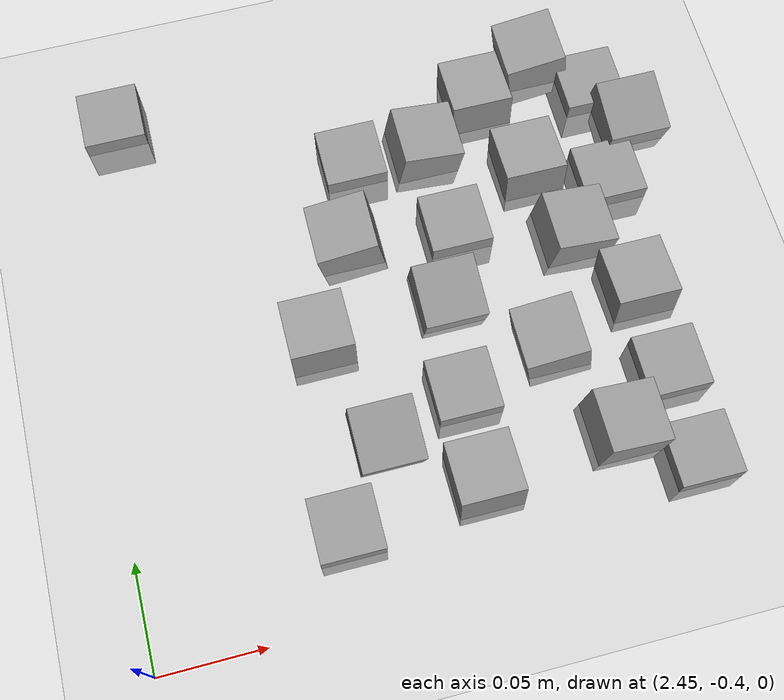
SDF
<sdf version="1.7">
 <world name="default">
  <model name="ground_plane">
   <static>1</static>
   <link name="link">
    <collision name="collision">
     <geometry><plane><normal>0 0 1</normal><size>100 100</size></plane></geometry>
     <surface><friction><ode><mu>100</mu><mu2>50</mu2></ode></friction></surface>
    </collision>
    <visual name="visual">
     <cast_shadows>0</cast_shadows>
     <geometry><plane><normal>0 0 1</normal><size>100 100</size></plane></geometry>
     <material>
      <script><uri>file://media/materials/scripts/gazebo.material</uri><name>Gazebo/Grey</name></script>
     </material>
    </visual>
   </link>
  </model>
  <model name="stone_road_4">
   <link name="link_0_clone_2_clone_2_clone_13_clone_clone_16_clone_19">
    <inertial>
     <mass>1</mass>
     <inertia>
      <ixx>0.166667</ixx>
      <ixy>0</ixy>
      <ixz>0</ixz>
      <iyy>0.166667</iyy>
      <iyz>0</iyz>
      <izz>0.166667</izz>
     </inertia>
    </inertial>
    <pose>0.219442 0.006622 -0.006222 0 -0 0</pose>
    <kinematic>1</kinematic>
    <visual name="visual">
     <geometry><box><size>0.03 0.03 0.03</size></box></geometry>
     <material>
      <lighting>1</lighting>
      <script><uri>file://media/materials/scripts/gazebo.material</uri><name>Gazebo/Grey</name></script>
      <shader type="pixel"><normal_map>__default__</normal_map></shader>
      <ambient>0.3 0.3 0.3 1</ambient>
      <diffuse>0.7 0.7 0.7 1</diffuse>
      <specular>0.01 0.01 0.01 1</specular>
      <emissive>0 0 0 1</emissive>
     </material>
    </visual>
    <collision name="collision">
     <geometry><box><size>0.03 0.03 0.03</size></box></geometry>
     <surface>
      <friction>
       <ode><mu>1</mu><mu2>1</mu2><fdir1>0 0 0</fdir1><slip1>0</slip1><slip2>0</slip2></ode>
       <torsional>
        <coefficient>1</coefficient>
        <patch_radius>0</patch_radius>
        <surface_radius>0</surface_radius>
        <use_patch_radius>1</use_patch_radius>
        <ode><slip>0</slip></ode>
       </torsional>
      </friction>
      <bounce><restitution_coefficient>0</restitution_coefficient><threshold>1e+06</threshold></bounce>
      <contact>
       <collide_without_contact>0</collide_without_contact>
       <collide_without_contact_bitmask>1</collide_without_contact_bitmask>
       <collide_bitmask>1</collide_bitmask>
       <ode>
        <soft_cfm>0</soft_cfm>
        <soft_erp>0.2</soft_erp>
        <kp>1e+13</kp>
        <kd>1</kd>
        <max_vel>0.01</max_vel>
        <min_depth>0</min_depth>
       </ode>
       <bullet>
        <split_impulse>1</split_impulse>
        <split_impulse_penetration_threshold>-0.01</split_impulse_penetration_threshold>
        <soft_cfm>0</soft_cfm>
        <soft_erp>0.2</soft_erp>
        <kp>1e+13</kp>
        <kd>1</kd>
       </bullet>
      </contact>
     </surface>
    </collision>
   </link>
   <static>0</static>
   <pose>2.25857 -0.135925 -0 0 -0 0</pose>
  </model>
  <model name="stone_road_9">
   <link name="link_0">
    <inertial>
     <mass>1</mass>
     <inertia>
      <ixx>0.166667</ixx>
      <ixy>0</ixy>
      <ixz>0</ixz>
      <iyy>0.166667</iyy>
      <iyz>0</iyz>
      <izz>0.166667</izz>
     </inertia>
    </inertial>
    <pose>-0.171827 0.03973 0.003778 0.2 -0 0</pose>
    <kinematic>1</kinematic>
    <visual name="visual">
     <geometry><box><size>0.03 0.03 0.03</size></box></geometry>
     <material>
      <lighting>1</lighting>
      <script><uri>file://media/materials/scripts/gazebo.material</uri><name>Gazebo/Grey</name></script>
      <shader type="pixel"><normal_map>__default__</normal_map></shader>
      <ambient>0.3 0.3 0.3 1</ambient>
      <diffuse>0.7 0.7 0.7 1</diffuse>
      <specular>0.01 0.01 0.01 1</specular>
      <emissive>0 0 0 1</emissive>
     </material>
    </visual>
    <collision name="collision">
     <geometry><box><size>0.03 0.03 0.03</size></box></geometry>
     <surface>
      <friction>
       <ode><mu>1</mu><mu2>1</mu2><fdir1>0 0 0</fdir1><slip1>0</slip1><slip2>0</slip2></ode>
       <torsional>
        <coefficient>1</coefficient>
        <patch_radius>0</patch_radius>
        <surface_radius>0</surface_radius>
        <use_patch_radius>1</use_patch_radius>
        <ode><slip>0</slip></ode>
       </torsional>
      </friction>
      <bounce><restitution_coefficient>0</restitution_coefficient><threshold>1e+06</threshold></bounce>
      <contact>
       <collide_without_contact>0</collide_without_contact>
       <collide_without_contact_bitmask>1</collide_without_contact_bitmask>
       <collide_bitmask>1</collide_bitmask>
       <ode>
        <soft_cfm>0</soft_cfm>
        <soft_erp>0.2</soft_erp>
        <kp>1e+13</kp>
        <kd>1</kd>
        <max_vel>0.01</max_vel>
        <min_depth>0</min_depth>
       </ode>
       <bullet>
        <split_impulse>1</split_impulse>
        <split_impulse_penetration_threshold>-0.01</split_impulse_penetration_threshold>
        <soft_cfm>0</soft_cfm>
        <soft_erp>0.2</soft_erp>
        <kp>1e+13</kp>
        <kd>1</kd>
       </bullet>
      </contact>
     </surface>
    </collision>
   </link>
   <link name="link_0_clone_10">
    <inertial>
     <mass>1</mass>
     <inertia>
      <ixx>0.166667</ixx>
      <ixy>0</ixy>
      <ixz>0</ixz>
      <iyy>0.166667</iyy>
      <iyz>0</iyz>
      <izz>0.166667</izz>
     </inertia>
    </inertial>
    <pose>-0.01295 0.17123 0.003778 0.2 -0 0</pose>
    <kinematic>1</kinematic>
    <visual name="visual">
     <geometry><box><size>0.03 0.03 0.03</size></box></geometry>
     <material>
      <lighting>1</lighting>
      <script><uri>file://media/materials/scripts/gazebo.material</uri><name>Gazebo/Grey</name></script>
      <shader type="pixel"><normal_map>__default__</normal_map></shader>
      <ambient>0.3 0.3 0.3 1</ambient>
      <diffuse>0.7 0.7 0.7 1</diffuse>
      <specular>0.01 0.01 0.01 1</specular>
      <emissive>0 0 0 1</emissive>
     </material>
    </visual>
    <collision name="collision">
     <geometry><box><size>0.03 0.03 0.03</size></box></geometry>
     <surface>
      <friction>
       <ode><mu>1</mu><mu2>1</mu2><fdir1>0 0 0</fdir1><slip1>0</slip1><slip2>0</slip2></ode>
       <torsional>
        <coefficient>1</coefficient>
        <patch_radius>0</patch_radius>
        <surface_radius>0</surface_radius>
        <use_patch_radius>1</use_patch_radius>
        <ode><slip>0</slip></ode>
       </torsional>
      </friction>
      <bounce><restitution_coefficient>0</restitution_coefficient><threshold>1e+06</threshold></bounce>
      <contact>
       <collide_without_contact>0</collide_without_contact>
       <collide_without_contact_bitmask>1</collide_without_contact_bitmask>
       <collide_bitmask>1</collide_bitmask>
       <ode>
        <soft_cfm>0</soft_cfm>
        <soft_erp>0.2</soft_erp>
        <kp>1e+13</kp>
        <kd>1</kd>
        <max_vel>0.01</max_vel>
        <min_depth>0</min_depth>
       </ode>
       <bullet>
        <split_impulse>1</split_impulse>
        <split_impulse_penetration_threshold>-0.01</split_impulse_penetration_threshold>
        <soft_cfm>0</soft_cfm>
        <soft_erp>0.2</soft_erp>
        <kp>1e+13</kp>
        <kd>1</kd>
       </bullet>
      </contact>
     </surface>
    </collision>
   </link>
   <link name="link_0_clone_2">
    <inertial>
     <mass>1</mass>
     <inertia>
      <ixx>0.166667</ixx>
      <ixy>0</ixy>
      <ixz>0</ixz>
      <iyy>0.166667</iyy>
      <iyz>0</iyz>
      <izz>0.166667</izz>
     </inertia>
    </inertial>
    <pose>-0.065685 0.018139 0.003778 0 0.15 0</pose>
    <kinematic>1</kinematic>
    <visual name="visual">
     <geometry><box><size>0.03 0.03 0.03</size></box></geometry>
     <material>
      <lighting>1</lighting>
      <script><uri>file://media/materials/scripts/gazebo.material</uri><name>Gazebo/Grey</name></script>
      <shader type="pixel"><normal_map>__default__</normal_map></shader>
      <ambient>0.3 0.3 0.3 1</ambient>
      <diffuse>0.7 0.7 0.7 1</diffuse>
      <specular>0.01 0.01 0.01 1</specular>
      <emissive>0 0 0 1</emissive>
     </material>
    </visual>
    <collision name="collision">
     <geometry><box><size>0.03 0.03 0.03</size></box></geometry>
     <surface>
      <friction>
       <ode><mu>1</mu><mu2>1</mu2><fdir1>0 0 0</fdir1><slip1>0</slip1><slip2>0</slip2></ode>
       <torsional>
        <coefficient>1</coefficient>
        <patch_radius>0</patch_radius>
        <surface_radius>0</surface_radius>
        <use_patch_radius>1</use_patch_radius>
        <ode><slip>0</slip></ode>
       </torsional>
      </friction>
      <bounce><restitution_coefficient>0</restitution_coefficient><threshold>1e+06</threshold></bounce>
      <contact>
       <collide_without_contact>0</collide_without_contact>
       <collide_without_contact_bitmask>1</collide_without_contact_bitmask>
       <collide_bitmask>1</collide_bitmask>
       <ode>
        <soft_cfm>0</soft_cfm>
        <soft_erp>0.2</soft_erp>
        <kp>1e+13</kp>
        <kd>1</kd>
        <max_vel>0.01</max_vel>
        <min_depth>0</min_depth>
       </ode>
       <bullet>
        <split_impulse>1</split_impulse>
        <split_impulse_penetration_threshold>-0.01</split_impulse_penetration_threshold>
        <soft_cfm>0</soft_cfm>
        <soft_erp>0.2</soft_erp>
        <kp>1e+13</kp>
        <kd>1</kd>
       </bullet>
      </contact>
     </surface>
    </collision>
   </link>
   <link name="link_0_clone_2_clone_2_clone_1">
    <inertial>
     <mass>1</mass>
     <inertia>
      <ixx>0.166667</ixx>
      <ixy>0</ixy>
      <ixz>0</ixz>
      <iyy>0.166667</iyy>
      <iyz>0</iyz>
      <izz>0.166667</izz>
     </inertia>
    </inertial>
    <pose>-0.085624 0.065625 0.003778 0 -0.15 0</pose>
    <kinematic>1</kinematic>
    <visual name="visual">
     <geometry><box><size>0.03 0.03 0.03</size></box></geometry>
     <material>
      <lighting>1</lighting>
      <script><uri>file://media/materials/scripts/gazebo.material</uri><name>Gazebo/Grey</name></script>
      <shader type="pixel"><normal_map>__default__</normal_map></shader>
      <ambient>0.3 0.3 0.3 1</ambient>
      <diffuse>0.7 0.7 0.7 1</diffuse>
      <specular>0.01 0.01 0.01 1</specular>
      <emissive>0 0 0 1</emissive>
     </material>
    </visual>
    <collision name="collision">
     <geometry><box><size>0.03 0.03 0.03</size></box></geometry>
     <surface>
      <friction>
       <ode><mu>1</mu><mu2>1</mu2><fdir1>0 0 0</fdir1><slip1>0</slip1><slip2>0</slip2></ode>
       <torsional>
        <coefficient>1</coefficient>
        <patch_radius>0</patch_radius>
        <surface_radius>0</surface_radius>
        <use_patch_radius>1</use_patch_radius>
        <ode><slip>0</slip></ode>
       </torsional>
      </friction>
      <bounce><restitution_coefficient>0</restitution_coefficient><threshold>1e+06</threshold></bounce>
      <contact>
       <collide_without_contact>0</collide_without_contact>
       <collide_without_contact_bitmask>1</collide_without_contact_bitmask>
       <collide_bitmask>1</collide_bitmask>
       <ode>
        <soft_cfm>0</soft_cfm>
        <soft_erp>0.2</soft_erp>
        <kp>1e+13</kp>
        <kd>1</kd>
        <max_vel>0.01</max_vel>
        <min_depth>0</min_depth>
       </ode>
       <bullet>
        <split_impulse>1</split_impulse>
        <split_impulse_penetration_threshold>-0.01</split_impulse_penetration_threshold>
        <soft_cfm>0</soft_cfm>
        <soft_erp>0.2</soft_erp>
        <kp>1e+13</kp>
        <kd>1</kd>
       </bullet>
      </contact>
     </surface>
    </collision>
   </link>
   <link name="link_0_clone_2_clone_2_clone_11">
    <inertial>
     <mass>1</mass>
     <inertia>
      <ixx>0.166667</ixx>
      <ixy>0</ixy>
      <ixz>0</ixz>
      <iyy>0.166667</iyy>
      <iyz>0</iyz>
      <izz>0.166667</izz>
     </inertia>
    </inertial>
    <pose>-0.050382 0.216558 0.003778 0 -0.15 0</pose>
    <kinematic>1</kinematic>
    <visual name="visual">
     <geometry><box><size>0.03 0.03 0.03</size></box></geometry>
     <material>
      <lighting>1</lighting>
      <script><uri>file://media/materials/scripts/gazebo.material</uri><name>Gazebo/Grey</name></script>
      <shader type="pixel"><normal_map>__default__</normal_map></shader>
      <ambient>0.3 0.3 0.3 1</ambient>
      <diffuse>0.7 0.7 0.7 1</diffuse>
      <specular>0.01 0.01 0.01 1</specular>
      <emissive>0 0 0 1</emissive>
     </material>
    </visual>
    <collision name="collision">
     <geometry><box><size>0.03 0.03 0.03</size></box></geometry>
     <surface>
      <friction>
       <ode><mu>1</mu><mu2>1</mu2><fdir1>0 0 0</fdir1><slip1>0</slip1><slip2>0</slip2></ode>
       <torsional>
        <coefficient>1</coefficient>
        <patch_radius>0</patch_radius>
        <surface_radius>0</surface_radius>
        <use_patch_radius>1</use_patch_radius>
        <ode><slip>0</slip></ode>
       </torsional>
      </friction>
      <bounce><restitution_coefficient>0</restitution_coefficient><threshold>1e+06</threshold></bounce>
      <contact>
       <collide_without_contact>0</collide_without_contact>
       <collide_without_contact_bitmask>1</collide_without_contact_bitmask>
       <collide_bitmask>1</collide_bitmask>
       <ode>
        <soft_cfm>0</soft_cfm>
        <soft_erp>0.2</soft_erp>
        <kp>1e+13</kp>
        <kd>1</kd>
        <max_vel>0.01</max_vel>
        <min_depth>0</min_depth>
       </ode>
       <bullet>
        <split_impulse>1</split_impulse>
        <split_impulse_penetration_threshold>-0.01</split_impulse_penetration_threshold>
        <soft_cfm>0</soft_cfm>
        <soft_erp>0.2</soft_erp>
        <kp>1e+13</kp>
        <kd>1</kd>
       </bullet>
      </contact>
     </surface>
    </collision>
   </link>
   <link name="link_0_clone_2_clone_2_clone_13_clone_clone_13">
    <inertial>
     <mass>1</mass>
     <inertia>
      <ixx>0.166667</ixx>
      <ixy>0</ixy>
      <ixz>0</ixz>
      <iyy>0.166667</iyy>
      <iyz>0</iyz>
      <izz>0.166667</izz>
     </inertia>
    </inertial>
    <pose>-0.069861 0.157394 0.003778 -0.1 0 0</pose>
    <kinematic>1</kinematic>
    <visual name="visual">
     <geometry><box><size>0.03 0.03 0.03</size></box></geometry>
     <material>
      <lighting>1</lighting>
      <script><uri>file://media/materials/scripts/gazebo.material</uri><name>Gazebo/Grey</name></script>
      <shader type="pixel"><normal_map>__default__</normal_map></shader>
      <ambient>0.3 0.3 0.3 1</ambient>
      <diffuse>0.7 0.7 0.7 1</diffuse>
      <specular>0.01 0.01 0.01 1</specular>
      <emissive>0 0 0 1</emissive>
     </material>
    </visual>
    <collision name="collision">
     <geometry><box><size>0.03 0.03 0.03</size></box></geometry>
     <surface>
      <friction>
       <ode><mu>1</mu><mu2>1</mu2><fdir1>0 0 0</fdir1><slip1>0</slip1><slip2>0</slip2></ode>
       <torsional>
        <coefficient>1</coefficient>
        <patch_radius>0</patch_radius>
        <surface_radius>0</surface_radius>
        <use_patch_radius>1</use_patch_radius>
        <ode><slip>0</slip></ode>
       </torsional>
      </friction>
      <bounce><restitution_coefficient>0</restitution_coefficient><threshold>1e+06</threshold></bounce>
      <contact>
       <collide_without_contact>0</collide_without_contact>
       <collide_without_contact_bitmask>1</collide_without_contact_bitmask>
       <collide_bitmask>1</collide_bitmask>
       <ode>
        <soft_cfm>0</soft_cfm>
        <soft_erp>0.2</soft_erp>
        <kp>1e+13</kp>
        <kd>1</kd>
        <max_vel>0.01</max_vel>
        <min_depth>0</min_depth>
       </ode>
       <bullet>
        <split_impulse>1</split_impulse>
        <split_impulse_penetration_threshold>-0.01</split_impulse_penetration_threshold>
        <soft_cfm>0</soft_cfm>
        <soft_erp>0.2</soft_erp>
        <kp>1e+13</kp>
        <kd>1</kd>
       </bullet>
      </contact>
     </surface>
    </collision>
   </link>
   <link name="link_0_clone_2_clone_2_clone_13_clone_clone_14">
    <inertial>
     <mass>1</mass>
     <inertia>
      <ixx>0.166667</ixx>
      <ixy>0</ixy>
      <ixz>0</ixz>
      <iyy>0.166667</iyy>
      <iyz>0</iyz>
      <izz>0.166667</izz>
     </inertia>
    </inertial>
    <pose>-0.190578 0.093923 0.003778 -0.1 0 0</pose>
    <kinematic>1</kinematic>
    <visual name="visual">
     <geometry><box><size>0.03 0.03 0.03</size></box></geometry>
     <material>
      <lighting>1</lighting>
      <script><uri>file://media/materials/scripts/gazebo.material</uri><name>Gazebo/Grey</name></script>
      <shader type="pixel"><normal_map>__default__</normal_map></shader>
      <ambient>0.3 0.3 0.3 1</ambient>
      <diffuse>0.7 0.7 0.7 1</diffuse>
      <specular>0.01 0.01 0.01 1</specular>
      <emissive>0 0 0 1</emissive>
     </material>
    </visual>
    <collision name="collision">
     <geometry><box><size>0.03 0.03 0.03</size></box></geometry>
     <surface>
      <friction>
       <ode><mu>1</mu><mu2>1</mu2><fdir1>0 0 0</fdir1><slip1>0</slip1><slip2>0</slip2></ode>
       <torsional>
        <coefficient>1</coefficient>
        <patch_radius>0</patch_radius>
        <surface_radius>0</surface_radius>
        <use_patch_radius>1</use_patch_radius>
        <ode><slip>0</slip></ode>
       </torsional>
      </friction>
      <bounce><restitution_coefficient>0</restitution_coefficient><threshold>1e+06</threshold></bounce>
      <contact>
       <collide_without_contact>0</collide_without_contact>
       <collide_without_contact_bitmask>1</collide_without_contact_bitmask>
       <collide_bitmask>1</collide_bitmask>
       <ode>
        <soft_cfm>0</soft_cfm>
        <soft_erp>0.2</soft_erp>
        <kp>1e+13</kp>
        <kd>1</kd>
        <max_vel>0.01</max_vel>
        <min_depth>0</min_depth>
       </ode>
       <bullet>
        <split_impulse>1</split_impulse>
        <split_impulse_penetration_threshold>-0.01</split_impulse_penetration_threshold>
        <soft_cfm>0</soft_cfm>
        <soft_erp>0.2</soft_erp>
        <kp>1e+13</kp>
        <kd>1</kd>
       </bullet>
      </contact>
     </surface>
    </collision>
   </link>
   <link name="link_0_clone_2_clone_2_clone_13_clone_clone_15">
    <inertial>
     <mass>1</mass>
     <inertia>
      <ixx>0.166667</ixx>
      <ixy>0</ixy>
      <ixz>0</ixz>
      <iyy>0.166667</iyy>
      <iyz>0</iyz>
      <izz>0.166667</izz>
     </inertia>
    </inertial>
    <pose>-0.084893 0.19984 0.003778 -0.1 0 0</pose>
    <kinematic>1</kinematic>
    <visual name="visual">
     <geometry><box><size>0.03 0.03 0.03</size></box></geometry>
     <material>
      <lighting>1</lighting>
      <script><uri>file://media/materials/scripts/gazebo.material</uri><name>Gazebo/Grey</name></script>
      <shader type="pixel"><normal_map>__default__</normal_map></shader>
      <ambient>0.3 0.3 0.3 1</ambient>
      <diffuse>0.7 0.7 0.7 1</diffuse>
      <specular>0.01 0.01 0.01 1</specular>
      <emissive>0 0 0 1</emissive>
     </material>
    </visual>
    <collision name="collision">
     <geometry><box><size>0.03 0.03 0.03</size></box></geometry>
     <surface>
      <friction>
       <ode><mu>1</mu><mu2>1</mu2><fdir1>0 0 0</fdir1><slip1>0</slip1><slip2>0</slip2></ode>
       <torsional>
        <coefficient>1</coefficient>
        <patch_radius>0</patch_radius>
        <surface_radius>0</surface_radius>
        <use_patch_radius>1</use_patch_radius>
        <ode><slip>0</slip></ode>
       </torsional>
      </friction>
      <bounce><restitution_coefficient>0</restitution_coefficient><threshold>1e+06</threshold></bounce>
      <contact>
       <collide_without_contact>0</collide_without_contact>
       <collide_without_contact_bitmask>1</collide_without_contact_bitmask>
       <collide_bitmask>1</collide_bitmask>
       <ode>
        <soft_cfm>0</soft_cfm>
        <soft_erp>0.2</soft_erp>
        <kp>1e+13</kp>
        <kd>1</kd>
        <max_vel>0.01</max_vel>
        <min_depth>0</min_depth>
       </ode>
       <bullet>
        <split_impulse>1</split_impulse>
        <split_impulse_penetration_threshold>-0.01</split_impulse_penetration_threshold>
        <soft_cfm>0</soft_cfm>
        <soft_erp>0.2</soft_erp>
        <kp>1e+13</kp>
        <kd>1</kd>
       </bullet>
      </contact>
     </surface>
    </collision>
   </link>
   <link name="link_0_clone_2_clone_2_clone_13_clone_clone_16_clone_2">
    <inertial>
     <mass>1</mass>
     <inertia>
      <ixx>0.166667</ixx>
      <ixy>0</ixy>
      <ixz>0</ixz>
      <iyy>0.166667</iyy>
      <iyz>0</iyz>
      <izz>0.166667</izz>
     </inertia>
    </inertial>
    <pose>-0.035128 0.040728 -0.006222 0 -0 0</pose>
    <kinematic>1</kinematic>
    <visual name="visual">
     <geometry><box><size>0.03 0.03 0.03</size></box></geometry>
     <material>
      <lighting>1</lighting>
      <script><uri>file://media/materials/scripts/gazebo.material</uri><name>Gazebo/Grey</name></script>
      <shader type="pixel"><normal_map>__default__</normal_map></shader>
      <ambient>0.3 0.3 0.3 1</ambient>
      <diffuse>0.7 0.7 0.7 1</diffuse>
      <specular>0.01 0.01 0.01 1</specular>
      <emissive>0 0 0 1</emissive>
     </material>
    </visual>
    <collision name="collision">
     <geometry><box><size>0.03 0.03 0.03</size></box></geometry>
     <surface>
      <friction>
       <ode><mu>1</mu><mu2>1</mu2><fdir1>0 0 0</fdir1><slip1>0</slip1><slip2>0</slip2></ode>
       <torsional>
        <coefficient>1</coefficient>
        <patch_radius>0</patch_radius>
        <surface_radius>0</surface_radius>
        <use_patch_radius>1</use_patch_radius>
        <ode><slip>0</slip></ode>
       </torsional>
      </friction>
      <bounce><restitution_coefficient>0</restitution_coefficient><threshold>1e+06</threshold></bounce>
      <contact>
       <collide_without_contact>0</collide_without_contact>
       <collide_without_contact_bitmask>1</collide_without_contact_bitmask>
       <collide_bitmask>1</collide_bitmask>
       <ode>
        <soft_cfm>0</soft_cfm>
        <soft_erp>0.2</soft_erp>
        <kp>1e+13</kp>
        <kd>1</kd>
        <max_vel>0.01</max_vel>
        <min_depth>0</min_depth>
       </ode>
       <bullet>
        <split_impulse>1</split_impulse>
        <split_impulse_penetration_threshold>-0.01</split_impulse_penetration_threshold>
        <soft_cfm>0</soft_cfm>
        <soft_erp>0.2</soft_erp>
        <kp>1e+13</kp>
        <kd>1</kd>
       </bullet>
      </contact>
     </surface>
    </collision>
   </link>
   <link name="link_0_clone_2_clone_2_clone_13_clone_clone_16_clone_21">
    <inertial>
     <mass>1</mass>
     <inertia>
      <ixx>0.166667</ixx>
      <ixy>0</ixy>
      <ixz>0</ixz>
      <iyy>0.166667</iyy>
      <iyz>0</iyz>
      <izz>0.166667</izz>
     </inertia>
    </inertial>
    <pose>-0.032398 0.142589 -0.006222 0 -0 0</pose>
    <kinematic>1</kinematic>
    <visual name="visual">
     <geometry><box><size>0.03 0.03 0.03</size></box></geometry>
     <material>
      <lighting>1</lighting>
      <script><uri>file://media/materials/scripts/gazebo.material</uri><name>Gazebo/Grey</name></script>
      <shader type="pixel"><normal_map>__default__</normal_map></shader>
      <ambient>0.3 0.3 0.3 1</ambient>
      <diffuse>0.7 0.7 0.7 1</diffuse>
      <specular>0.01 0.01 0.01 1</specular>
      <emissive>0 0 0 1</emissive>
     </material>
    </visual>
    <collision name="collision">
     <geometry><box><size>0.03 0.03 0.03</size></box></geometry>
     <surface>
      <friction>
       <ode><mu>1</mu><mu2>1</mu2><fdir1>0 0 0</fdir1><slip1>0</slip1><slip2>0</slip2></ode>
       <torsional>
        <coefficient>1</coefficient>
        <patch_radius>0</patch_radius>
        <surface_radius>0</surface_radius>
        <use_patch_radius>1</use_patch_radius>
        <ode><slip>0</slip></ode>
       </torsional>
      </friction>
      <bounce><restitution_coefficient>0</restitution_coefficient><threshold>1e+06</threshold></bounce>
      <contact>
       <collide_without_contact>0</collide_without_contact>
       <collide_without_contact_bitmask>1</collide_without_contact_bitmask>
       <collide_bitmask>1</collide_bitmask>
       <ode>
        <soft_cfm>0</soft_cfm>
        <soft_erp>0.2</soft_erp>
        <kp>1e+13</kp>
        <kd>1</kd>
        <max_vel>0.01</max_vel>
        <min_depth>0</min_depth>
       </ode>
       <bullet>
        <split_impulse>1</split_impulse>
        <split_impulse_penetration_threshold>-0.01</split_impulse_penetration_threshold>
        <soft_cfm>0</soft_cfm>
        <soft_erp>0.2</soft_erp>
        <kp>1e+13</kp>
        <kd>1</kd>
       </bullet>
      </contact>
     </surface>
    </collision>
   </link>
   <link name="link_0_clone_2_clone_2_clone_13_clone_clone_16_clone_22">
    <inertial>
     <mass>1</mass>
     <inertia>
      <ixx>0.166667</ixx>
      <ixy>0</ixy>
      <ixz>0</ixz>
      <iyy>0.166667</iyy>
      <iyz>0</iyz>
      <izz>0.166667</izz>
     </inertia>
    </inertial>
    <pose>-0.025872 0.194724 -0.006222 0 -0 0</pose>
    <kinematic>1</kinematic>
    <visual name="visual">
     <geometry><box><size>0.03 0.03 0.03</size></box></geometry>
     <material>
      <lighting>1</lighting>
      <script><uri>file://media/materials/scripts/gazebo.material</uri><name>Gazebo/Grey</name></script>
      <shader type="pixel"><normal_map>__default__</normal_map></shader>
      <ambient>0.3 0.3 0.3 1</ambient>
      <diffuse>0.7 0.7 0.7 1</diffuse>
      <specular>0.01 0.01 0.01 1</specular>
      <emissive>0 0 0 1</emissive>
     </material>
    </visual>
    <collision name="collision">
     <geometry><box><size>0.03 0.03 0.03</size></box></geometry>
     <surface>
      <friction>
       <ode><mu>1</mu><mu2>1</mu2><fdir1>0 0 0</fdir1><slip1>0</slip1><slip2>0</slip2></ode>
       <torsional>
        <coefficient>1</coefficient>
        <patch_radius>0</patch_radius>
        <surface_radius>0</surface_radius>
        <use_patch_radius>1</use_patch_radius>
        <ode><slip>0</slip></ode>
       </torsional>
      </friction>
      <bounce><restitution_coefficient>0</restitution_coefficient><threshold>1e+06</threshold></bounce>
      <contact>
       <collide_without_contact>0</collide_without_contact>
       <collide_without_contact_bitmask>1</collide_without_contact_bitmask>
       <collide_bitmask>1</collide_bitmask>
       <ode>
        <soft_cfm>0</soft_cfm>
        <soft_erp>0.2</soft_erp>
        <kp>1e+13</kp>
        <kd>1</kd>
        <max_vel>0.01</max_vel>
        <min_depth>0</min_depth>
       </ode>
       <bullet>
        <split_impulse>1</split_impulse>
        <split_impulse_penetration_threshold>-0.01</split_impulse_penetration_threshold>
        <soft_cfm>0</soft_cfm>
        <soft_erp>0.2</soft_erp>
        <kp>1e+13</kp>
        <kd>1</kd>
       </bullet>
      </contact>
     </surface>
    </collision>
   </link>
   <link name="link_0_clone_2_clone_2_clone_13_clone_clone_16_clone_25">
    <inertial>
     <mass>1</mass>
     <inertia>
      <ixx>0.166667</ixx>
      <ixy>0</ixy>
      <ixz>0</ixz>
      <iyy>0.166667</iyy>
      <iyz>0</iyz>
      <izz>0.166667</izz>
     </inertia>
    </inertial>
    <pose>-0.15326 0.182661 -0.006222 0 -0 0</pose>
    <kinematic>1</kinematic>
    <visual name="visual">
     <geometry><box><size>0.03 0.03 0.03</size></box></geometry>
     <material>
      <lighting>1</lighting>
      <script><uri>file://media/materials/scripts/gazebo.material</uri><name>Gazebo/Grey</name></script>
      <shader type="pixel"><normal_map>__default__</normal_map></shader>
      <ambient>0.3 0.3 0.3 1</ambient>
      <diffuse>0.7 0.7 0.7 1</diffuse>
      <specular>0.01 0.01 0.01 1</specular>
      <emissive>0 0 0 1</emissive>
     </material>
    </visual>
    <collision name="collision">
     <geometry><box><size>0.03 0.03 0.03</size></box></geometry>
     <surface>
      <friction>
       <ode><mu>1</mu><mu2>1</mu2><fdir1>0 0 0</fdir1><slip1>0</slip1><slip2>0</slip2></ode>
       <torsional>
        <coefficient>1</coefficient>
        <patch_radius>0</patch_radius>
        <surface_radius>0</surface_radius>
        <use_patch_radius>1</use_patch_radius>
        <ode><slip>0</slip></ode>
       </torsional>
      </friction>
      <bounce><restitution_coefficient>0</restitution_coefficient><threshold>1e+06</threshold></bounce>
      <contact>
       <collide_without_contact>0</collide_without_contact>
       <collide_without_contact_bitmask>1</collide_without_contact_bitmask>
       <collide_bitmask>1</collide_bitmask>
       <ode>
        <soft_cfm>0</soft_cfm>
        <soft_erp>0.2</soft_erp>
        <kp>1e+13</kp>
        <kd>1</kd>
        <max_vel>0.01</max_vel>
        <min_depth>0</min_depth>
       </ode>
       <bullet>
        <split_impulse>1</split_impulse>
        <split_impulse_penetration_threshold>-0.01</split_impulse_penetration_threshold>
        <soft_cfm>0</soft_cfm>
        <soft_erp>0.2</soft_erp>
        <kp>1e+13</kp>
        <kd>1</kd>
       </bullet>
      </contact>
     </surface>
    </collision>
   </link>
   <link name="link_0_clone_2_clone_2_clone_13_clone_clone_16_clone_26">
    <inertial>
     <mass>1</mass>
     <inertia>
      <ixx>0.166667</ixx>
      <ixy>0</ixy>
      <ixz>0</ixz>
      <iyy>0.166667</iyy>
      <iyz>0</iyz>
      <izz>0.166667</izz>
     </inertia>
    </inertial>
    <pose>-0.035162 -0.002247 -0.006222 0 -0 0</pose>
    <kinematic>1</kinematic>
    <visual name="visual">
     <geometry><box><size>0.03 0.03 0.03</size></box></geometry>
     <material>
      <lighting>1</lighting>
      <script><uri>file://media/materials/scripts/gazebo.material</uri><name>Gazebo/Grey</name></script>
      <shader type="pixel"><normal_map>__default__</normal_map></shader>
      <ambient>0.3 0.3 0.3 1</ambient>
      <diffuse>0.7 0.7 0.7 1</diffuse>
      <specular>0.01 0.01 0.01 1</specular>
      <emissive>0 0 0 1</emissive>
     </material>
    </visual>
    <collision name="collision">
     <geometry><box><size>0.03 0.03 0.03</size></box></geometry>
     <surface>
      <friction>
       <ode><mu>1</mu><mu2>1</mu2><fdir1>0 0 0</fdir1><slip1>0</slip1><slip2>0</slip2></ode>
       <torsional>
        <coefficient>1</coefficient>
        <patch_radius>0</patch_radius>
        <surface_radius>0</surface_radius>
        <use_patch_radius>1</use_patch_radius>
        <ode><slip>0</slip></ode>
       </torsional>
      </friction>
      <bounce><restitution_coefficient>0</restitution_coefficient><threshold>1e+06</threshold></bounce>
      <contact>
       <collide_without_contact>0</collide_without_contact>
       <collide_without_contact_bitmask>1</collide_without_contact_bitmask>
       <collide_bitmask>1</collide_bitmask>
       <ode>
        <soft_cfm>0</soft_cfm>
        <soft_erp>0.2</soft_erp>
        <kp>1e+13</kp>
        <kd>1</kd>
        <max_vel>0.01</max_vel>
        <min_depth>0</min_depth>
       </ode>
       <bullet>
        <split_impulse>1</split_impulse>
        <split_impulse_penetration_threshold>-0.01</split_impulse_penetration_threshold>
        <soft_cfm>0</soft_cfm>
        <soft_erp>0.2</soft_erp>
        <kp>1e+13</kp>
        <kd>1</kd>
       </bullet>
      </contact>
     </surface>
    </collision>
   </link>
   <link name="link_0_clone_2_clone_2_clone_13_clone_clone_16_clone_3">
    <inertial>
     <mass>1</mass>
     <inertia>
      <ixx>0.166667</ixx>
      <ixy>0</ixy>
      <ixz>0</ixz>
      <iyy>0.166667</iyy>
      <iyz>0</iyz>
      <izz>0.166667</izz>
     </inertia>
    </inertial>
    <pose>-0.112739 0.135576 -0.006222 0 -0 0</pose>
    <kinematic>1</kinematic>
    <visual name="visual">
     <geometry><box><size>0.03 0.03 0.03</size></box></geometry>
     <material>
      <lighting>1</lighting>
      <script><uri>file://media/materials/scripts/gazebo.material</uri><name>Gazebo/Grey</name></script>
      <shader type="pixel"><normal_map>__default__</normal_map></shader>
      <ambient>0.3 0.3 0.3 1</ambient>
      <diffuse>0.7 0.7 0.7 1</diffuse>
      <specular>0.01 0.01 0.01 1</specular>
      <emissive>0 0 0 1</emissive>
     </material>
    </visual>
    <collision name="collision">
     <geometry><box><size>0.03 0.03 0.03</size></box></geometry>
     <surface>
      <friction>
       <ode><mu>1</mu><mu2>1</mu2><fdir1>0 0 0</fdir1><slip1>0</slip1><slip2>0</slip2></ode>
       <torsional>
        <coefficient>1</coefficient>
        <patch_radius>0</patch_radius>
        <surface_radius>0</surface_radius>
        <use_patch_radius>1</use_patch_radius>
        <ode><slip>0</slip></ode>
       </torsional>
      </friction>
      <bounce><restitution_coefficient>0</restitution_coefficient><threshold>1e+06</threshold></bounce>
      <contact>
       <collide_without_contact>0</collide_without_contact>
       <collide_without_contact_bitmask>1</collide_without_contact_bitmask>
       <collide_bitmask>1</collide_bitmask>
       <ode>
        <soft_cfm>0</soft_cfm>
        <soft_erp>0.2</soft_erp>
        <kp>1e+13</kp>
        <kd>1</kd>
        <max_vel>0.01</max_vel>
        <min_depth>0</min_depth>
       </ode>
       <bullet>
        <split_impulse>1</split_impulse>
        <split_impulse_penetration_threshold>-0.01</split_impulse_penetration_threshold>
        <soft_cfm>0</soft_cfm>
        <soft_erp>0.2</soft_erp>
        <kp>1e+13</kp>
        <kd>1</kd>
       </bullet>
      </contact>
     </surface>
    </collision>
   </link>
   <link name="link_0_clone_2_clone_2_clone_13_clone_clone_16_clone_31">
    <inertial>
     <mass>1</mass>
     <inertia>
      <ixx>0.166667</ixx>
      <ixy>0</ixy>
      <ixz>0</ixz>
      <iyy>0.166667</iyy>
      <iyz>0</iyz>
      <izz>0.166667</izz>
     </inertia>
    </inertial>
    <pose>-0.198811 0.004584 -0.006222 0 -0 0</pose>
    <kinematic>1</kinematic>
    <visual name="visual">
     <geometry><box><size>0.03 0.03 0.03</size></box></geometry>
     <material>
      <lighting>1</lighting>
      <script><uri>file://media/materials/scripts/gazebo.material</uri><name>Gazebo/Grey</name></script>
      <shader type="pixel"><normal_map>__default__</normal_map></shader>
      <ambient>0.3 0.3 0.3 1</ambient>
      <diffuse>0.7 0.7 0.7 1</diffuse>
      <specular>0.01 0.01 0.01 1</specular>
      <emissive>0 0 0 1</emissive>
     </material>
    </visual>
    <collision name="collision">
     <geometry><box><size>0.03 0.03 0.03</size></box></geometry>
     <surface>
      <friction>
       <ode><mu>1</mu><mu2>1</mu2><fdir1>0 0 0</fdir1><slip1>0</slip1><slip2>0</slip2></ode>
       <torsional>
        <coefficient>1</coefficient>
        <patch_radius>0</patch_radius>
        <surface_radius>0</surface_radius>
        <use_patch_radius>1</use_patch_radius>
        <ode><slip>0</slip></ode>
       </torsional>
      </friction>
      <bounce><restitution_coefficient>0</restitution_coefficient><threshold>1e+06</threshold></bounce>
      <contact>
       <collide_without_contact>0</collide_without_contact>
       <collide_without_contact_bitmask>1</collide_without_contact_bitmask>
       <collide_bitmask>1</collide_bitmask>
       <ode>
        <soft_cfm>0</soft_cfm>
        <soft_erp>0.2</soft_erp>
        <kp>1e+13</kp>
        <kd>1</kd>
        <max_vel>0.01</max_vel>
        <min_depth>0</min_depth>
       </ode>
       <bullet>
        <split_impulse>1</split_impulse>
        <split_impulse_penetration_threshold>-0.01</split_impulse_penetration_threshold>
        <soft_cfm>0</soft_cfm>
        <soft_erp>0.2</soft_erp>
        <kp>1e+13</kp>
        <kd>1</kd>
       </bullet>
      </contact>
     </surface>
    </collision>
   </link>
   <link name="link_0_clone_2_clone_2_clone_13_clone_clone_16_clone_4">
    <inertial>
     <mass>1</mass>
     <inertia>
      <ixx>0.166667</ixx>
      <ixy>0</ixy>
      <ixz>0</ixz>
      <iyy>0.166667</iyy>
      <iyz>0</iyz>
      <izz>0.166667</izz>
     </inertia>
    </inertial>
    <pose>-0.131411 0.053677 -0.006222 0 -0 0</pose>
    <kinematic>1</kinematic>
    <visual name="visual">
     <geometry><box><size>0.03 0.03 0.03</size></box></geometry>
     <material>
      <lighting>1</lighting>
      <script><uri>file://media/materials/scripts/gazebo.material</uri><name>Gazebo/Grey</name></script>
      <shader type="pixel"><normal_map>__default__</normal_map></shader>
      <ambient>0.3 0.3 0.3 1</ambient>
      <diffuse>0.7 0.7 0.7 1</diffuse>
      <specular>0.01 0.01 0.01 1</specular>
      <emissive>0 0 0 1</emissive>
     </material>
    </visual>
    <collision name="collision">
     <geometry><box><size>0.03 0.03 0.03</size></box></geometry>
     <surface>
      <friction>
       <ode><mu>1</mu><mu2>1</mu2><fdir1>0 0 0</fdir1><slip1>0</slip1><slip2>0</slip2></ode>
       <torsional>
        <coefficient>1</coefficient>
        <patch_radius>0</patch_radius>
        <surface_radius>0</surface_radius>
        <use_patch_radius>1</use_patch_radius>
        <ode><slip>0</slip></ode>
       </torsional>
      </friction>
      <bounce><restitution_coefficient>0</restitution_coefficient><threshold>1e+06</threshold></bounce>
      <contact>
       <collide_without_contact>0</collide_without_contact>
       <collide_without_contact_bitmask>1</collide_without_contact_bitmask>
       <collide_bitmask>1</collide_bitmask>
       <ode>
        <soft_cfm>0</soft_cfm>
        <soft_erp>0.2</soft_erp>
        <kp>1e+13</kp>
        <kd>1</kd>
        <max_vel>0.01</max_vel>
        <min_depth>0</min_depth>
       </ode>
       <bullet>
        <split_impulse>1</split_impulse>
        <split_impulse_penetration_threshold>-0.01</split_impulse_penetration_threshold>
        <soft_cfm>0</soft_cfm>
        <soft_erp>0.2</soft_erp>
        <kp>1e+13</kp>
        <kd>1</kd>
       </bullet>
      </contact>
     </surface>
    </collision>
   </link>
   <link name="link_0_clone_2_clone_2_clone_13_clone_clone_2">
    <inertial>
     <mass>1</mass>
     <inertia>
      <ixx>0.166667</ixx>
      <ixy>0</ixy>
      <ixz>0</ixz>
      <iyy>0.166667</iyy>
      <iyz>0</iyz>
      <izz>0.166667</izz>
     </inertia>
    </inertial>
    <pose>-0.037997 0.082571 0.003778 -0.1 0 0</pose>
    <kinematic>1</kinematic>
    <visual name="visual">
     <geometry><box><size>0.03 0.03 0.03</size></box></geometry>
     <material>
      <lighting>1</lighting>
      <script><uri>file://media/materials/scripts/gazebo.material</uri><name>Gazebo/Grey</name></script>
      <shader type="pixel"><normal_map>__default__</normal_map></shader>
      <ambient>0.3 0.3 0.3 1</ambient>
      <diffuse>0.7 0.7 0.7 1</diffuse>
      <specular>0.01 0.01 0.01 1</specular>
      <emissive>0 0 0 1</emissive>
     </material>
    </visual>
    <collision name="collision">
     <geometry><box><size>0.03 0.03 0.03</size></box></geometry>
     <surface>
      <friction>
       <ode><mu>1</mu><mu2>1</mu2><fdir1>0 0 0</fdir1><slip1>0</slip1><slip2>0</slip2></ode>
       <torsional>
        <coefficient>1</coefficient>
        <patch_radius>0</patch_radius>
        <surface_radius>0</surface_radius>
        <use_patch_radius>1</use_patch_radius>
        <ode><slip>0</slip></ode>
       </torsional>
      </friction>
      <bounce><restitution_coefficient>0</restitution_coefficient><threshold>1e+06</threshold></bounce>
      <contact>
       <collide_without_contact>0</collide_without_contact>
       <collide_without_contact_bitmask>1</collide_without_contact_bitmask>
       <collide_bitmask>1</collide_bitmask>
       <ode>
        <soft_cfm>0</soft_cfm>
        <soft_erp>0.2</soft_erp>
        <kp>1e+13</kp>
        <kd>1</kd>
        <max_vel>0.01</max_vel>
        <min_depth>0</min_depth>
       </ode>
       <bullet>
        <split_impulse>1</split_impulse>
        <split_impulse_penetration_threshold>-0.01</split_impulse_penetration_threshold>
        <soft_cfm>0</soft_cfm>
        <soft_erp>0.2</soft_erp>
        <kp>1e+13</kp>
        <kd>1</kd>
       </bullet>
      </contact>
     </surface>
    </collision>
   </link>
   <link name="link_0_clone_2_clone_2_clone_13_clone_clone_7">
    <inertial>
     <mass>1</mass>
     <inertia>
      <ixx>0.166667</ixx>
      <ixy>0</ixy>
      <ixz>0</ixz>
      <iyy>0.166667</iyy>
      <iyz>0</iyz>
      <izz>0.166667</izz>
     </inertia>
    </inertial>
    <pose>-0.133876 0.010561 0.003778 -0.1 0 0</pose>
    <kinematic>1</kinematic>
    <visual name="visual">
     <geometry><box><size>0.03 0.03 0.03</size></box></geometry>
     <material>
      <lighting>1</lighting>
      <script><uri>file://media/materials/scripts/gazebo.material</uri><name>Gazebo/Grey</name></script>
      <shader type="pixel"><normal_map>__default__</normal_map></shader>
      <ambient>0.3 0.3 0.3 1</ambient>
      <diffuse>0.7 0.7 0.7 1</diffuse>
      <specular>0.01 0.01 0.01 1</specular>
      <emissive>0 0 0 1</emissive>
     </material>
    </visual>
    <collision name="collision">
     <geometry><box><size>0.03 0.03 0.03</size></box></geometry>
     <surface>
      <friction>
       <ode><mu>1</mu><mu2>1</mu2><fdir1>0 0 0</fdir1><slip1>0</slip1><slip2>0</slip2></ode>
       <torsional>
        <coefficient>1</coefficient>
        <patch_radius>0</patch_radius>
        <surface_radius>0</surface_radius>
        <use_patch_radius>1</use_patch_radius>
        <ode><slip>0</slip></ode>
       </torsional>
      </friction>
      <bounce><restitution_coefficient>0</restitution_coefficient><threshold>1e+06</threshold></bounce>
      <contact>
       <collide_without_contact>0</collide_without_contact>
       <collide_without_contact_bitmask>1</collide_without_contact_bitmask>
       <collide_bitmask>1</collide_bitmask>
       <ode>
        <soft_cfm>0</soft_cfm>
        <soft_erp>0.2</soft_erp>
        <kp>1e+13</kp>
        <kd>1</kd>
        <max_vel>0.01</max_vel>
        <min_depth>0</min_depth>
       </ode>
       <bullet>
        <split_impulse>1</split_impulse>
        <split_impulse_penetration_threshold>-0.01</split_impulse_penetration_threshold>
        <soft_cfm>0</soft_cfm>
        <soft_erp>0.2</soft_erp>
        <kp>1e+13</kp>
        <kd>1</kd>
       </bullet>
      </contact>
     </surface>
    </collision>
   </link>
   <link name="link_0_clone_2_clone_2_clone_2">
    <inertial>
     <mass>1</mass>
     <inertia>
      <ixx>0.166667</ixx>
      <ixy>0</ixy>
      <ixz>0</ixz>
      <iyy>0.166667</iyy>
      <iyz>0</iyz>
      <izz>0.166667</izz>
     </inertia>
    </inertial>
    <pose>-0.166079 0.139989 0.003778 0 -0.15 0</pose>
    <kinematic>1</kinematic>
    <visual name="visual">
     <geometry><box><size>0.03 0.03 0.03</size></box></geometry>
     <material>
      <lighting>1</lighting>
      <script><uri>file://media/materials/scripts/gazebo.material</uri><name>Gazebo/Grey</name></script>
      <shader type="pixel"><normal_map>__default__</normal_map></shader>
      <ambient>0.3 0.3 0.3 1</ambient>
      <diffuse>0.7 0.7 0.7 1</diffuse>
      <specular>0.01 0.01 0.01 1</specular>
      <emissive>0 0 0 1</emissive>
     </material>
    </visual>
    <collision name="collision">
     <geometry><box><size>0.03 0.03 0.03</size></box></geometry>
     <surface>
      <friction>
       <ode><mu>1</mu><mu2>1</mu2><fdir1>0 0 0</fdir1><slip1>0</slip1><slip2>0</slip2></ode>
       <torsional>
        <coefficient>1</coefficient>
        <patch_radius>0</patch_radius>
        <surface_radius>0</surface_radius>
        <use_patch_radius>1</use_patch_radius>
        <ode><slip>0</slip></ode>
       </torsional>
      </friction>
      <bounce><restitution_coefficient>0</restitution_coefficient><threshold>1e+06</threshold></bounce>
      <contact>
       <collide_without_contact>0</collide_without_contact>
       <collide_without_contact_bitmask>1</collide_without_contact_bitmask>
       <collide_bitmask>1</collide_bitmask>
       <ode>
        <soft_cfm>0</soft_cfm>
        <soft_erp>0.2</soft_erp>
        <kp>1e+13</kp>
        <kd>1</kd>
        <max_vel>0.01</max_vel>
        <min_depth>0</min_depth>
       </ode>
       <bullet>
        <split_impulse>1</split_impulse>
        <split_impulse_penetration_threshold>-0.01</split_impulse_penetration_threshold>
        <soft_cfm>0</soft_cfm>
        <soft_erp>0.2</soft_erp>
        <kp>1e+13</kp>
        <kd>1</kd>
       </bullet>
      </contact>
     </surface>
    </collision>
   </link>
   <link name="link_0_clone_2_clone_3">
    <inertial>
     <mass>1</mass>
     <inertia>
      <ixx>0.166667</ixx>
      <ixy>0</ixy>
      <ixz>0</ixz>
      <iyy>0.166667</iyy>
      <iyz>0</iyz>
      <izz>0.166667</izz>
     </inertia>
    </inertial>
    <pose>-0.058921 0.117271 0.003778 0 0.15 0</pose>
    <kinematic>1</kinematic>
    <visual name="visual">
     <geometry><box><size>0.03 0.03 0.03</size></box></geometry>
     <material>
      <lighting>1</lighting>
      <script><uri>file://media/materials/scripts/gazebo.material</uri><name>Gazebo/Grey</name></script>
      <shader type="pixel"><normal_map>__default__</normal_map></shader>
      <ambient>0.3 0.3 0.3 1</ambient>
      <diffuse>0.7 0.7 0.7 1</diffuse>
      <specular>0.01 0.01 0.01 1</specular>
      <emissive>0 0 0 1</emissive>
     </material>
    </visual>
    <collision name="collision">
     <geometry><box><size>0.03 0.03 0.03</size></box></geometry>
     <surface>
      <friction>
       <ode><mu>1</mu><mu2>1</mu2><fdir1>0 0 0</fdir1><slip1>0</slip1><slip2>0</slip2></ode>
       <torsional>
        <coefficient>1</coefficient>
        <patch_radius>0</patch_radius>
        <surface_radius>0</surface_radius>
        <use_patch_radius>1</use_patch_radius>
        <ode><slip>0</slip></ode>
       </torsional>
      </friction>
      <bounce><restitution_coefficient>0</restitution_coefficient><threshold>1e+06</threshold></bounce>
      <contact>
       <collide_without_contact>0</collide_without_contact>
       <collide_without_contact_bitmask>1</collide_without_contact_bitmask>
       <collide_bitmask>1</collide_bitmask>
       <ode>
        <soft_cfm>0</soft_cfm>
        <soft_erp>0.2</soft_erp>
        <kp>1e+13</kp>
        <kd>1</kd>
        <max_vel>0.01</max_vel>
        <min_depth>0</min_depth>
       </ode>
       <bullet>
        <split_impulse>1</split_impulse>
        <split_impulse_penetration_threshold>-0.01</split_impulse_penetration_threshold>
        <soft_cfm>0</soft_cfm>
        <soft_erp>0.2</soft_erp>
        <kp>1e+13</kp>
        <kd>1</kd>
       </bullet>
      </contact>
     </surface>
    </collision>
   </link>
   <link name="link_0_clone_2_clone_4">
    <inertial>
     <mass>1</mass>
     <inertia>
      <ixx>0.166667</ixx>
      <ixy>0</ixy>
      <ixz>0</ixz>
      <iyy>0.166667</iyy>
      <iyz>0</iyz>
      <izz>0.166667</izz>
     </inertia>
    </inertial>
    <pose>-0.117313 0.179399 0.003778 0 0.15 0</pose>
    <kinematic>1</kinematic>
    <visual name="visual">
     <geometry><box><size>0.03 0.03 0.03</size></box></geometry>
     <material>
      <lighting>1</lighting>
      <script><uri>file://media/materials/scripts/gazebo.material</uri><name>Gazebo/Grey</name></script>
      <shader type="pixel"><normal_map>__default__</normal_map></shader>
      <ambient>0.3 0.3 0.3 1</ambient>
      <diffuse>0.7 0.7 0.7 1</diffuse>
      <specular>0.01 0.01 0.01 1</specular>
      <emissive>0 0 0 1</emissive>
     </material>
    </visual>
    <collision name="collision">
     <geometry><box><size>0.03 0.03 0.03</size></box></geometry>
     <surface>
      <friction>
       <ode><mu>1</mu><mu2>1</mu2><fdir1>0 0 0</fdir1><slip1>0</slip1><slip2>0</slip2></ode>
       <torsional>
        <coefficient>1</coefficient>
        <patch_radius>0</patch_radius>
        <surface_radius>0</surface_radius>
        <use_patch_radius>1</use_patch_radius>
        <ode><slip>0</slip></ode>
       </torsional>
      </friction>
      <bounce><restitution_coefficient>0</restitution_coefficient><threshold>1e+06</threshold></bounce>
      <contact>
       <collide_without_contact>0</collide_without_contact>
       <collide_without_contact_bitmask>1</collide_without_contact_bitmask>
       <collide_bitmask>1</collide_bitmask>
       <ode>
        <soft_cfm>0</soft_cfm>
        <soft_erp>0.2</soft_erp>
        <kp>1e+13</kp>
        <kd>1</kd>
        <max_vel>0.01</max_vel>
        <min_depth>0</min_depth>
       </ode>
       <bullet>
        <split_impulse>1</split_impulse>
        <split_impulse_penetration_threshold>-0.01</split_impulse_penetration_threshold>
        <soft_cfm>0</soft_cfm>
        <soft_erp>0.2</soft_erp>
        <kp>1e+13</kp>
        <kd>1</kd>
       </bullet>
      </contact>
     </surface>
    </collision>
   </link>
   <link name="link_0_clone_3">
    <inertial>
     <mass>1</mass>
     <inertia>
      <ixx>0.166667</ixx>
      <ixy>0</ixy>
      <ixz>0</ixz>
      <iyy>0.166667</iyy>
      <iyz>0</iyz>
      <izz>0.166667</izz>
     </inertia>
    </inertial>
    <pose>-0.126666 0.098861 0.003778 0.2 -0 0</pose>
    <kinematic>1</kinematic>
    <visual name="visual">
     <geometry><box><size>0.03 0.03 0.03</size></box></geometry>
     <material>
      <lighting>1</lighting>
      <script><uri>file://media/materials/scripts/gazebo.material</uri><name>Gazebo/Grey</name></script>
      <shader type="pixel"><normal_map>__default__</normal_map></shader>
      <ambient>0.3 0.3 0.3 1</ambient>
      <diffuse>0.7 0.7 0.7 1</diffuse>
      <specular>0.01 0.01 0.01 1</specular>
      <emissive>0 0 0 1</emissive>
     </material>
    </visual>
    <collision name="collision">
     <geometry><box><size>0.03 0.03 0.03</size></box></geometry>
     <surface>
      <friction>
       <ode><mu>1</mu><mu2>1</mu2><fdir1>0 0 0</fdir1><slip1>0</slip1><slip2>0</slip2></ode>
       <torsional>
        <coefficient>1</coefficient>
        <patch_radius>0</patch_radius>
        <surface_radius>0</surface_radius>
        <use_patch_radius>1</use_patch_radius>
        <ode><slip>0</slip></ode>
       </torsional>
      </friction>
      <bounce><restitution_coefficient>0</restitution_coefficient><threshold>1e+06</threshold></bounce>
      <contact>
       <collide_without_contact>0</collide_without_contact>
       <collide_without_contact_bitmask>1</collide_without_contact_bitmask>
       <collide_bitmask>1</collide_bitmask>
       <ode>
        <soft_cfm>0</soft_cfm>
        <soft_erp>0.2</soft_erp>
        <kp>1e+13</kp>
        <kd>1</kd>
        <max_vel>0.01</max_vel>
        <min_depth>0</min_depth>
       </ode>
       <bullet>
        <split_impulse>1</split_impulse>
        <split_impulse_penetration_threshold>-0.01</split_impulse_penetration_threshold>
        <soft_cfm>0</soft_cfm>
        <soft_erp>0.2</soft_erp>
        <kp>1e+13</kp>
        <kd>1</kd>
       </bullet>
      </contact>
     </surface>
    </collision>
   </link>
   <static>0</static>
   <pose>2.743 -0.362549 -0 0 -0 0</pose>
  </model>
 </world>
</sdf>
